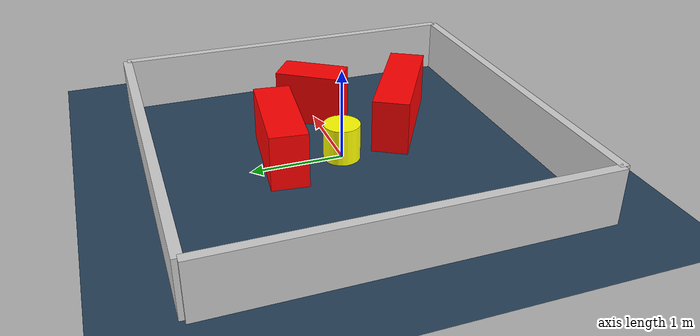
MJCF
<?xml version="1.0" ?>
<mujoco model="generated_environment">
  <option timestep="0.01" integrator="RK4" cone="elliptic"/>
  <default>
    <geom density="1"/>
  </default>
  <asset>
    <texture builtin="gradient" height="3072" rgb1="0.3 0.5 0.7" rgb2="0 0 0" type="skybox" width="512"/>
    <texture builtin="checker" height="300" mark="edge" markrgb="0.8 0.8 0.8" name="groundplane" rgb1="0.2 0.3 0.4" rgb2="0.1 0.2 0.3" type="2d" width="300"/>
    <material name="groundplane" reflectance="0.2" texrepeat="5 5" texture="groundplane" texuniform="true"/>
    <material name="robot" rgba="0.0 1.0 0.0 1"/>
  </asset>
  <worldbody>
    <light dir="0 0 -1" directional="true" pos="0 0 1.5"/>
    <geom condim="4" friction="1.0 0.005 0.001" material="groundplane" name="floor" size="0 0 0.05" type="plane"/>
    <body name="walls">
      <geom name="wall_1" condim="4" pos="-2.0 0.0 0.3" rgba="0.800000011920929 0.800000011920929 0.800000011920929 1.0" size="0.05 2.0 0.3" type="box"/>
      <geom name="wall_2" condim="4" pos="2.0 0.0 0.3" rgba="0.800000011920929 0.800000011920929 0.800000011920929 1.0" size="0.05 2.0 0.3" type="box"/>
      <geom name="wall_3" condim="4" pos="0.0 -2.0 0.3" rgba="0.800000011920929 0.800000011920929 0.800000011920929 1.0" size="2.0 0.05 0.3" type="box"/>
      <geom name="wall_4" condim="4" pos="0.0 2.0 0.3" rgba="0.800000011920929 0.800000011920929 0.800000011920929 1.0" size="2.0 0.05 0.3" type="box"/>
    </body>
    <body name="robot">
      <joint name="joint_x" type="slide" pos="0 0 0" axis="1 0 0"/>
      <joint name="joint_y" type="slide" pos="0 0 0" axis="0 1 0"/>
      <geom name="robot" type="sphere" pos="0.3 0.0 0.2" size="0.05" mass="5." friction="1.0 0.005 0.0001" condim="4" rgba="0.5 0.5 0.5 1.0"/>
      <site name="sensor_ball"/>
    </body>
    <body name="obstacle_movable_1">
      <geom name="obstacle_movable_1" condim="4" pos="0.0 0.0 0.2" euler="0 0 0.0" friction="1.0 0.005 0.001" rgba="1.0 1.0 0.0 1.0" size="0.2 0.2 0.0" type="cylinder" mass="0.1"/>
      <joint type="free"/>
    </body>
    <body name="obstacle_2_static">
      <geom name="obstacle_2_static" condim="4" pos="0.5048069365370231 -0.8738490160236039 0.3" euler="0 0 329.19799248602726" friction="1.0 0.005 0.001" rgba="1 0 0 1" size="0.6995694260085293 0.2 0.3" type="box"/>
    </body>
    <body name="obstacle_3_static">
      <geom name="obstacle_3_static" condim="4" pos="0.13346719856339595 0.6366172948140234 0.3" euler="0 0 173.794991211617" friction="1.0 0.005 0.001" rgba="1 0 0 1" size="0.5838639931262202 0.2 0.3" type="box"/>
    </body>
    <body name="obstacle_4_static">
      <geom name="obstacle_4_static" condim="4" pos="1.0217408246402273 0.0050136642788631836 0.3" euler="0 0 55.463499152822436" friction="1.0 0.005 0.001" rgba="1 0 0 1" size="0.3754522900780721 0.2 0.3" type="box"/>
    </body>
  </worldbody>
  <actuator>
    <motor name="actuator_x" joint="joint_x" gear="1" ctrlrange="-1 1"/>
    <motor name="actuator_y" joint="joint_y" gear="1" ctrlrange="-1 1"/>
  </actuator>
</mujoco>
